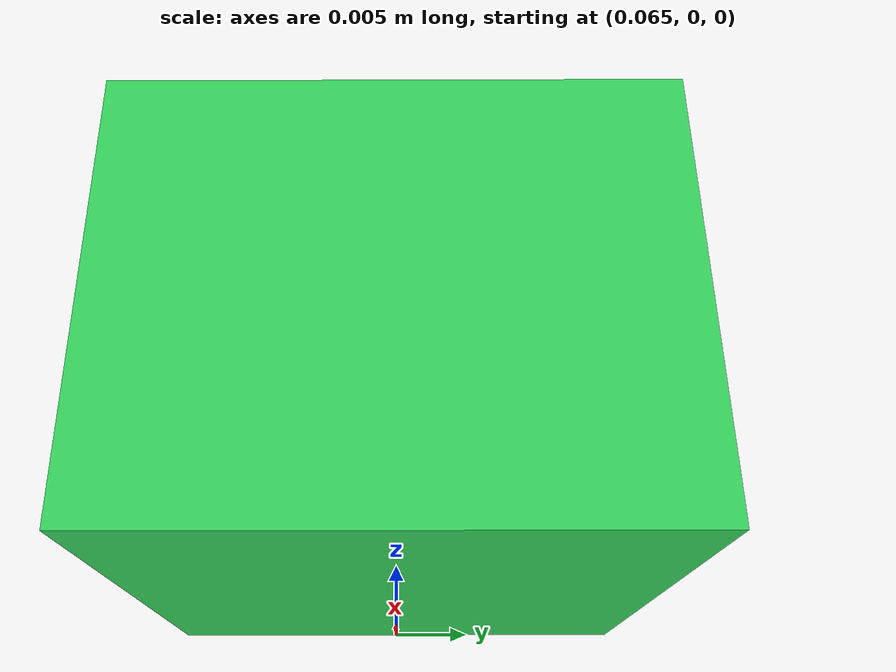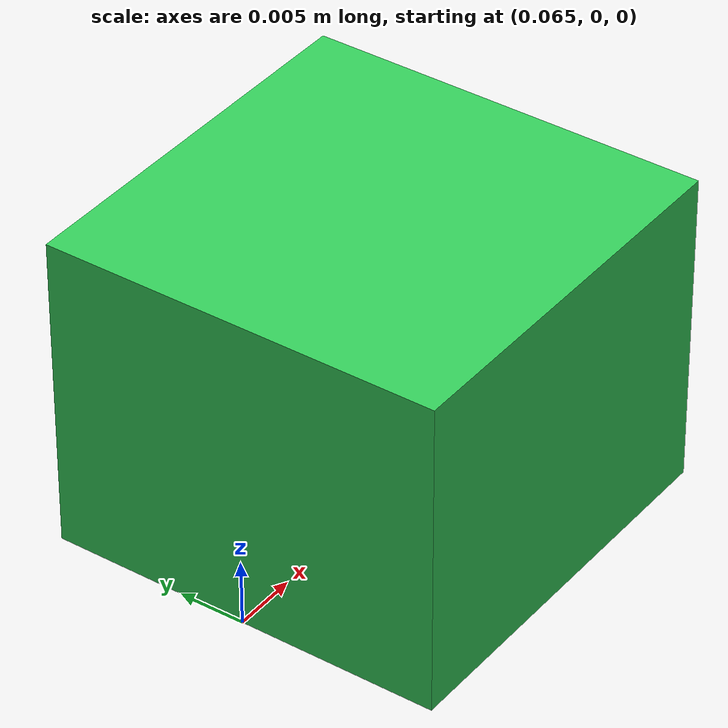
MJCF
<mujoco model="microduck_toy">
    <compiler angle="radian" autolimits="true"/>

    <worldbody>
        <body name="toy" pos="0.08 0 0.012">
            <freejoint name="toy_free"/>
            <inertial pos="0 0 0" mass="0.03" diaginertia="3.690e-6 3.690e-6 4.500e-6"/>
            <geom type="box" name="toy_geom" size="0.015 0.015 0.012" rgba="0.2 0.8 0.35 1"
                  friction="1.0 0.01 0.001" condim="3"/>
        </body>
    </worldbody>
</mujoco>
